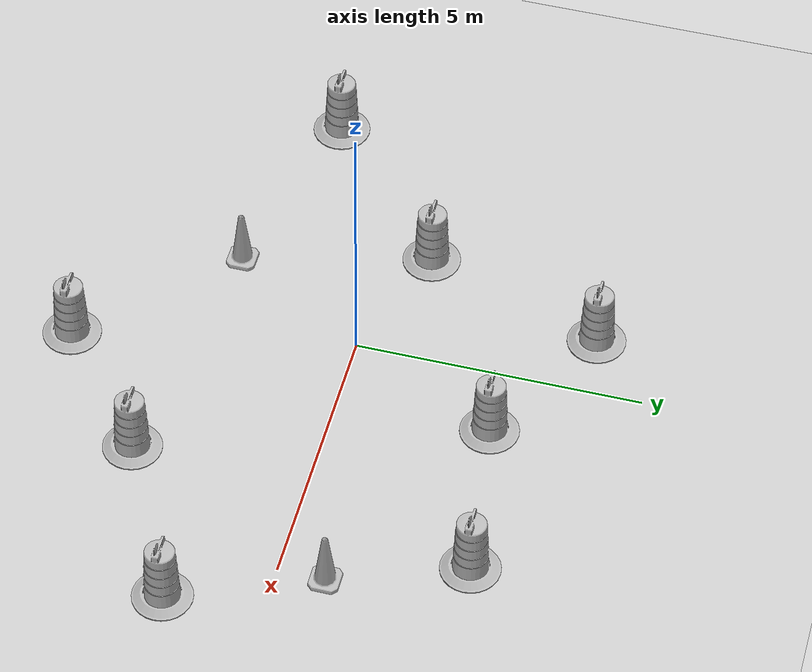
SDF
<sdf version="1.7">
 <world name="default">
  <light name="sun" type="directional">
   <pose>0 0 10 0 -0 0</pose>
   <diffuse>0.8 0.8 0.8 1</diffuse>
   <specular>0.2 0.2 0.2 1</specular>
   <attenuation>
    <range>1000</range>
    <constant>0.9</constant>
    <linear>0.01</linear>
    <quadratic>0.001</quadratic>
   </attenuation>
   <direction>-0.5 0.1 -0.9</direction>
   <spot><inner_angle>0</inner_angle><outer_angle>0</outer_angle><falloff>0</falloff></spot>
  </light>
  <model name="ground_plane">
   <static>1</static>
   <link name="link">
    <collision name="collision">
     <geometry><plane><normal>0 0 1</normal><size>100 100</size></plane></geometry>
     <surface>
      <contact><collide_bitmask>65535</collide_bitmask></contact>
      <friction><ode><mu>100</mu><mu2>50</mu2></ode></friction>
     </surface>
    </collision>
    <visual name="visual">
     <cast_shadows>0</cast_shadows>
     <geometry><plane><normal>0 0 1</normal><size>100 100</size></plane></geometry>
     <material>
      <script><uri>file://media/materials/scripts/gazebo.material</uri><name>Gazebo/Grey</name></script>
     </material>
    </visual>
   </link>
  </model>
  <gravity>0 0 -9.8</gravity>
  <magnetic_field>6e-06 2.3e-05 -4.2e-05</magnetic_field>
  <atmosphere type="adiabatic"/>
  <physics type="ode">
   <max_step_size>0.001</max_step_size>
   <real_time_factor>1</real_time_factor>
   <real_time_update_rate>1000</real_time_update_rate>
  </physics>
  <scene><ambient>0.4 0.4 0.4 1</ambient><background>0.7 0.7 0.7 1</background><shadows>1</shadows></scene>
  <audio><device>default</device></audio>
  <spherical_coordinates>
   <surface_model>EARTH_WGS84</surface_model>
   <latitude_deg>0</latitude_deg>
   <longitude_deg>0</longitude_deg>
   <elevation>0</elevation>
   <heading_deg>0</heading_deg>
  </spherical_coordinates>
  <model name="Construction Cone">
   <link name="link">
    <collision name="collision">
     <geometry>
      <mesh><scale>10 10 10</scale><uri>model://construction_cone/meshes/construction_cone.dae</uri></mesh>
     </geometry>
    </collision>
    <visual name="visual">
     <geometry>
      <mesh><scale>10 10 10</scale><uri>model://construction_cone/meshes/construction_cone.dae</uri></mesh>
     </geometry>
    </visual>
    <inertial>
     <inertia><ixx>1</ixx><ixy>0</ixy><ixz>0</ixz><iyy>1</iyy><iyz>0</iyz><izz>1</izz></inertia>
     <mass>1</mass>
    </inertial>
   </link>
   <pose>-1.41376 -2.43937 -0 0 -1e-06 0</pose>
  </model>
  <model name="Construction Barrel">
   <link name="link">
    <inertial>
     <pose>0 0 0.4 0 -0 0</pose>
     <mass>500</mass>
     <inertia><ixx>51.2096</ixx><iyy>51.2096</iyy><izz>25</izz><ixy>0</ixy><ixz>0</ixz><iyz>0</iyz></inertia>
    </inertial>
    <collision name="collision">
     <geometry><mesh><uri>model://construction_barrel/meshes/construction_barrel.dae</uri></mesh></geometry>
    </collision>
    <visual name="visual">
     <geometry><mesh><uri>model://construction_barrel/meshes/construction_barrel.dae</uri></mesh></geometry>
    </visual>
   </link>
   <pose>3.12018 -3.04919 -1e-06 -5e-06 -3e-06 -1.8e-05</pose>
  </model>
  <model name="Construction Barrel_0">
   <link name="link">
    <inertial>
     <pose>0 0 0.4 0 -0 0</pose>
     <mass>500</mass>
     <inertia><ixx>51.2096</ixx><iyy>51.2096</iyy><izz>25</izz><ixy>0</ixy><ixz>0</ixz><iyz>0</iyz></inertia>
    </inertial>
    <collision name="collision">
     <geometry><mesh><uri>model://construction_barrel/meshes/construction_barrel.dae</uri></mesh></geometry>
    </collision>
    <visual name="visual">
     <geometry><mesh><uri>model://construction_barrel/meshes/construction_barrel.dae</uri></mesh></geometry>
    </visual>
   </link>
   <pose>-2.24584 0.764934 -2e-06 -5e-06 -4e-06 -1.5e-05</pose>
  </model>
  <model name="Construction Cone_0">
   <link name="link">
    <collision name="collision">
     <geometry>
      <mesh><scale>10 10 10</scale><uri>model://construction_cone/meshes/construction_cone.dae</uri></mesh>
     </geometry>
    </collision>
    <visual name="visual">
     <geometry>
      <mesh><scale>10 10 10</scale><uri>model://construction_cone/meshes/construction_cone.dae</uri></mesh>
     </geometry>
    </visual>
    <inertial>
     <inertia><ixx>1</ixx><ixy>0</ixy><ixz>0</ixz><iyy>1</iyy><iyz>0</iyz><izz>1</izz></inertia>
     <mass>1</mass>
    </inertial>
   </link>
   <pose>4.99996 0.81307 0 -0 -0 -0</pose>
  </model>
  <model name="Construction Barrel_1">
   <link name="link">
    <inertial>
     <pose>0 0 0.4 0 -0 0</pose>
     <mass>500</mass>
     <inertia><ixx>51.2096</ixx><iyy>51.2096</iyy><izz>25</izz><ixy>0</ixy><ixz>0</ixz><iyz>0</iyz></inertia>
    </inertial>
    <collision name="collision">
     <geometry><mesh><uri>model://construction_barrel/meshes/construction_barrel.dae</uri></mesh></geometry>
    </collision>
    <visual name="visual">
     <geometry><mesh><uri>model://construction_barrel/meshes/construction_barrel.dae</uri></mesh></geometry>
    </visual>
   </link>
   <pose>1.25601 2.65159 -3e-06 -1e-05 6e-06 -1.3e-05</pose>
  </model>
  <model name="Construction Barrel_2">
   <link name="link">
    <inertial>
     <pose>0 0 0.4 0 -0 0</pose>
     <mass>500</mass>
     <inertia><ixx>51.2096</ixx><iyy>51.2096</iyy><izz>25</izz><ixy>0</ixy><ixz>0</ixz><iyz>0</iyz></inertia>
    </inertial>
    <collision name="collision">
     <geometry><mesh><uri>model://construction_barrel/meshes/construction_barrel.dae</uri></mesh></geometry>
    </collision>
    <visual name="visual">
     <geometry><mesh><uri>model://construction_barrel/meshes/construction_barrel.dae</uri></mesh></geometry>
    </visual>
   </link>
   <pose>-4.90996 -1.5822 -4e-06 -5e-06 -7e-06 -1e-05</pose>
  </model>
  <model name="Construction Barrel_3">
   <link name="link">
    <inertial>
     <pose>0 0 0.4 0 -0 0</pose>
     <mass>500</mass>
     <inertia><ixx>51.2096</ixx><iyy>51.2096</iyy><izz>25</izz><ixy>0</ixy><ixz>0</ixz><iyz>0</iyz></inertia>
    </inertial>
    <collision name="collision">
     <geometry><mesh><uri>model://construction_barrel/meshes/construction_barrel.dae</uri></mesh></geometry>
    </collision>
    <visual name="visual">
     <geometry><mesh><uri>model://construction_barrel/meshes/construction_barrel.dae</uri></mesh></geometry>
    </visual>
   </link>
   <pose>0.968616 -4.80497 -2e-06 1e-06 8e-06 -9e-06</pose>
  </model>
  <model name="Construction Barrel_4">
   <link name="link">
    <inertial>
     <pose>0 0 0.4 0 -0 0</pose>
     <mass>500</mass>
     <inertia><ixx>51.2096</ixx><iyy>51.2096</iyy><izz>25</izz><ixy>0</ixy><ixz>0</ixz><iyz>0</iyz></inertia>
    </inertial>
    <collision name="collision">
     <geometry><mesh><uri>model://construction_barrel/meshes/construction_barrel.dae</uri></mesh></geometry>
    </collision>
    <visual name="visual">
     <geometry><mesh><uri>model://construction_barrel/meshes/construction_barrel.dae</uri></mesh></geometry>
    </visual>
   </link>
   <pose>5.97753 -1.65452 0 0 0 -8e-06</pose>
  </model>
  <model name="Construction Barrel_5">
   <link name="link">
    <inertial>
     <pose>0 0 0.4 0 -0 0</pose>
     <mass>500</mass>
     <inertia><ixx>51.2096</ixx><iyy>51.2096</iyy><izz>25</izz><ixy>0</ixy><ixz>0</ixz><iyz>0</iyz></inertia>
    </inertial>
    <collision name="collision">
     <geometry><mesh><uri>model://construction_barrel/meshes/construction_barrel.dae</uri></mesh></geometry>
    </collision>
    <visual name="visual">
     <geometry><mesh><uri>model://construction_barrel/meshes/construction_barrel.dae</uri></mesh></geometry>
    </visual>
   </link>
   <pose>-1.14928 3.9612 0 0 0 -7e-06</pose>
  </model>
  <model name="Construction Barrel_6">
   <link name="link">
    <inertial>
     <pose>0 0 0.4 0 -0 0</pose>
     <mass>500</mass>
     <inertia><ixx>51.2096</ixx><iyy>51.2096</iyy><izz>25</izz><ixy>0</ixy><ixz>0</ixz><iyz>0</iyz></inertia>
    </inertial>
    <collision name="collision">
     <geometry><mesh><uri>model://construction_barrel/meshes/construction_barrel.dae</uri></mesh></geometry>
    </collision>
    <visual name="visual">
     <geometry><mesh><uri>model://construction_barrel/meshes/construction_barrel.dae</uri></mesh></geometry>
    </visual>
   </link>
   <pose>4.1559 3.03173 -1e-06 -3e-06 -1e-06 -4e-06</pose>
  </model>
 </world>
</sdf>
